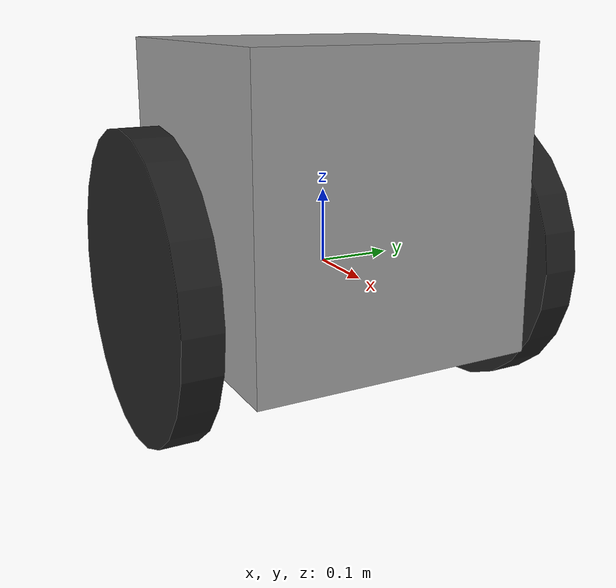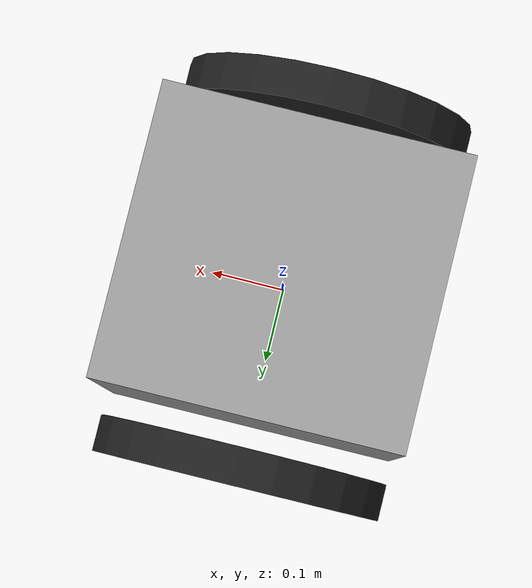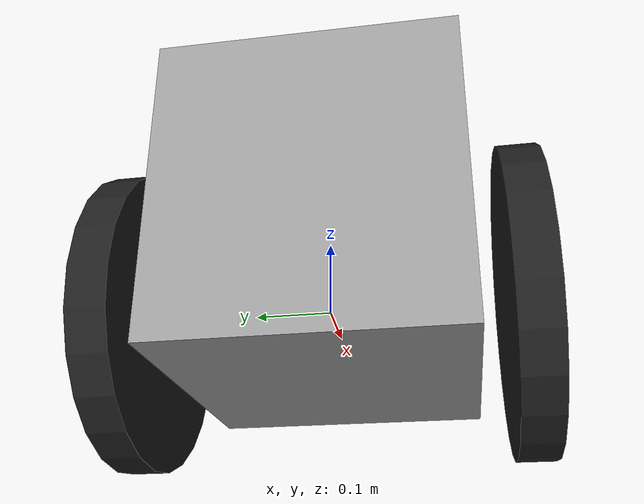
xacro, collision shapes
<?xml version="1.0"?>
<!-- Revolute-Revolute Manipulator -->
<robot name="segway" xmlns:xacro="http://www.ros.org/wiki/xacro">

  <!-- Import all Gazebo-customization elements, including Gazebo colors -->
  <xacro:include filename="$(find segway_description)/urdf/segway.gazebo" />
  <!-- Import Rviz colors -->
  <xacro:include filename="$(find segway_description)/urdf/materials.xacro" />

  <!-- Used for fixing robot to Gazebo 'base_link' -->
  <link name="dummy"/>

  <joint name="dummy_joint" type="fixed">
    <parent link="dummy"/>
    <child link="cyberpod/base_link"/>
  </joint>

  <link name="cyberpod/base_link">
    <visual>
      <origin rpy="0.0 0 0" xyz="0 0 0"/>
      <geometry>
	      <mesh filename="package://segway_description/urdf/Frame.stl" scale="0.01 0.01 0.01"/>
      </geometry>
    </visual>
    <inertial>
       <origin rpy="0 0 0" xyz="0.0 0.0 0.0"/>
       <mass value="0.001" />
       <inertia ixx="0.001" ixy="0" ixz="0" iyy="0.001" iyz="0" izz="0.001" />
    </inertial>

    <collision>
      <origin xyz="0 0 0.1"/>
      <geometry>
        <box size="0.4 0.38 0.4" />
      </geometry>
    </collision>

  </link>

 <joint name="w1_joint" type="continuous">
    <parent link="cyberpod/base_link"/>
    <child link="w1_link" />
    <origin xyz="0 .25 0" rpy="0 0 0" />
    <axis xyz="0 1 0" />
  </joint>

  <link name="w1_link" >
    <inertial>
      <origin xyz="0 0 0" />
      <mass value="1.0" />
      <inertia  ixx="0.001" ixy="0.0"  ixz="0.0"  iyy="0.001"  iyz="0.0"  izz="0.001" />
    </inertial>

    <visual>
      <origin xyz="0 0 0"/>
      <geometry>
        <mesh filename="package://segway_description/urdf/WheelL.stl" scale="0.01 0.01 0.01"/>
      </geometry>
    </visual>

    <collision>
      <origin xyz="0 0 0" rpy="1.5708 0 0"/>
      <geometry>
        <cylinder length="0.05" radius="0.2" />
      </geometry>
    </collision>
  </link>

 <joint name="w2_joint" type="continuous">
    <parent link="cyberpod/base_link" />
    <child link="w2_link" />
    <origin xyz="0 -0.25 0" rpy="0 0 0" />
    <axis xyz="0 1 0" />
  </joint>

  <link name="w2_link" >
    <inertial>
      <origin xyz="0 0 0" />
      <mass value="1.0" />
      <inertia  ixx="0.001" ixy="0.0"  ixz="0.0"  iyy="0.001"  iyz="0.0"  izz="0.001" />
    </inertial>

    <visual>
      <origin xyz="0 0 0"/>
      <geometry>
        <mesh filename="package://segway_description/urdf/WheelR.stl" scale="0.01 0.01 0.01"/>
      </geometry>
    </visual>

    <collision>
      <origin xyz="0 0 0" rpy="1.5708 0 0"/>
      <geometry>
        <cylinder length="0.05" radius="0.2" />
      </geometry>
    </collision>
  </link>

  <transmission name="tran1">
    <type>transmission_interface/SimpleTransmission</type>
    <joint name="w1_joint">
      <hardwareInterface>hardware_interface/EffortJointInterface</hardwareInterface>
    </joint>
    <actuator name="motor1">
      <hardwareInterface>hardware_interface/EffortJointInterface</hardwareInterface>
      <mechanicalReduction>1</mechanicalReduction>
    </actuator>
  </transmission>

  <transmission name="tran2">
    <type>transmission_interface/SimpleTransmission</type>
    <joint name="w2_joint">
      <hardwareInterface>hardware_interface/EffortJointInterface</hardwareInterface>
    </joint>
    <actuator name="motor2">
      <hardwareInterface>hardware_interface/EffortJointInterface</hardwareInterface>
      <mechanicalReduction>1</mechanicalReduction>
    </actuator>
  </transmission>

</robot>
